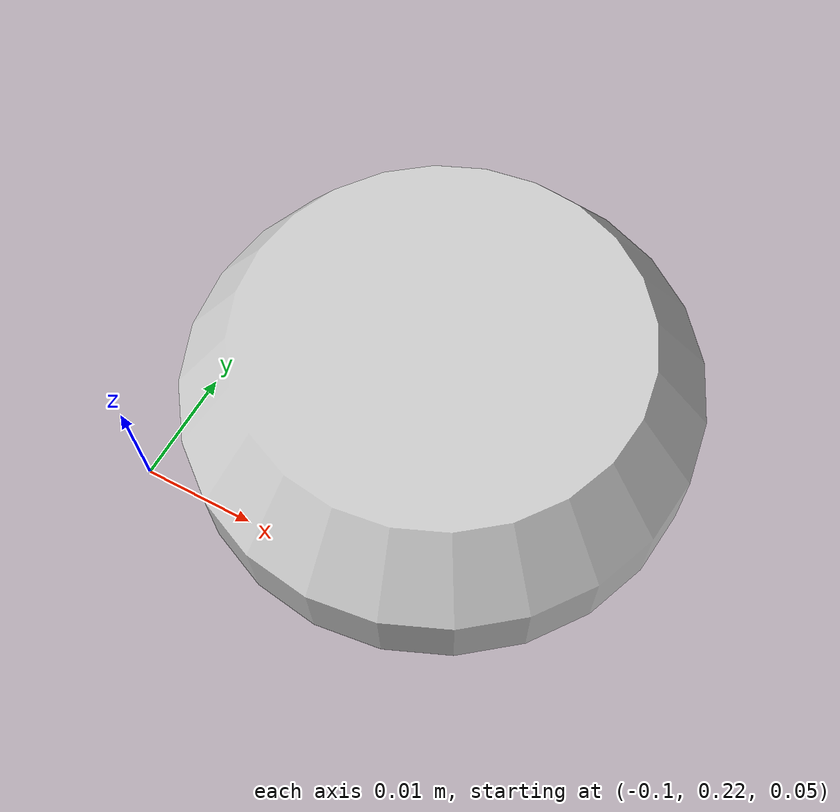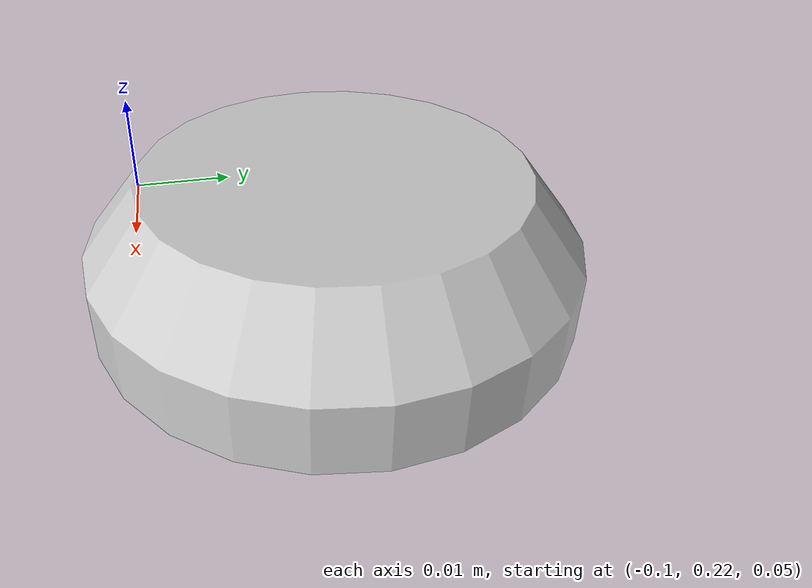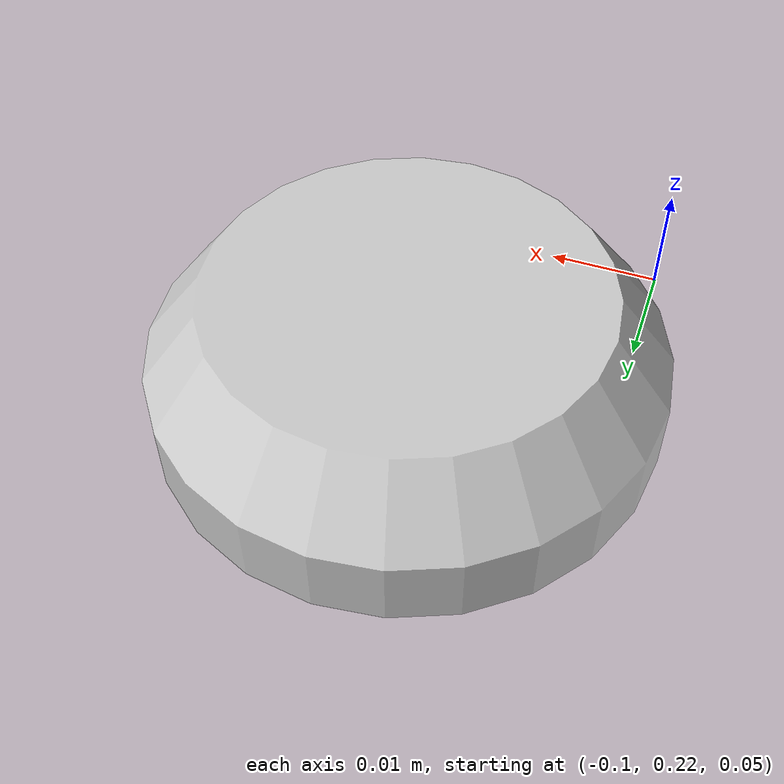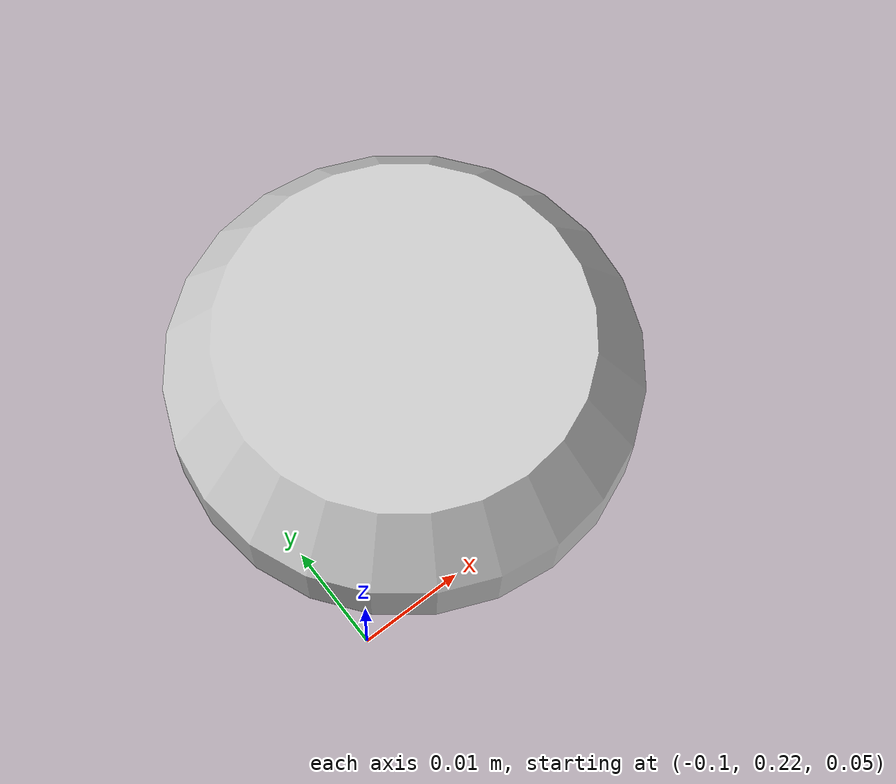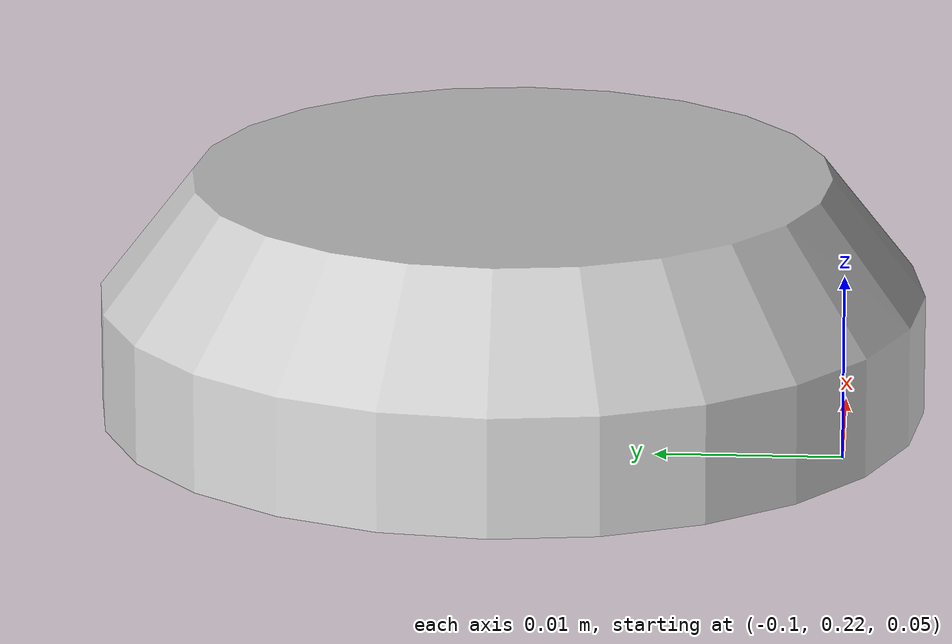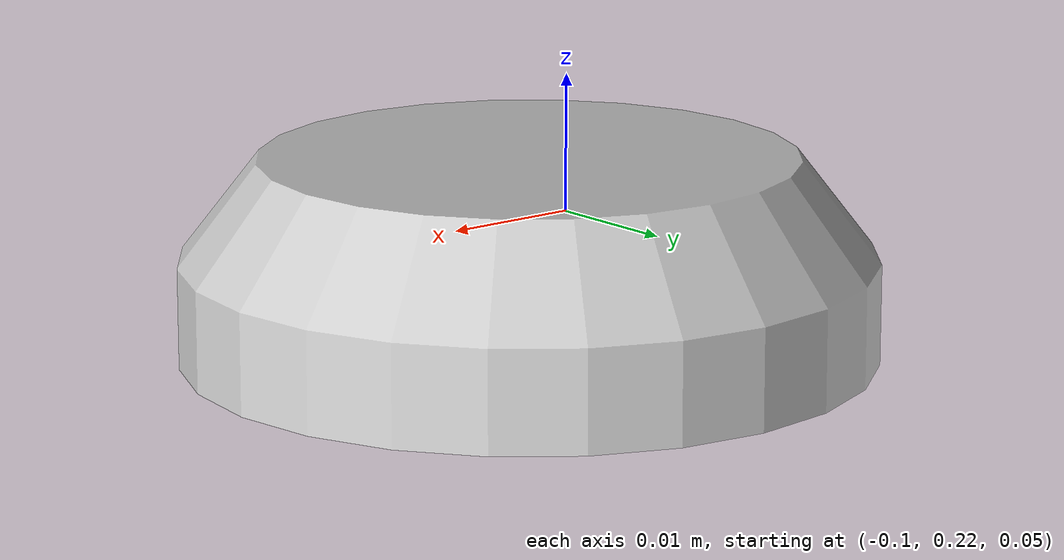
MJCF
<mujoco model="original-35">
  <default>
    <default class="visual">
      <geom group="2" type="mesh" contype="0" conaffinity="0"/>
    </default>
    <default class="collision">
      <geom group="3" type="mesh"/>
    </default>
  </default>
  <asset>
    <material name="material_0_0" specular="0.06666666666666667" shininess="0.03" rgba="0.8 0.8 0.8 1"/>
    <mesh file="original-35.obj"/>
  </asset>
  <worldbody>
    <body name="original-35">
      <geom material="material_0_0" mesh="original-35" class="visual"/>
      <geom mesh="original-35" class="collision"/>
    </body>
  </worldbody>
</mujoco>
